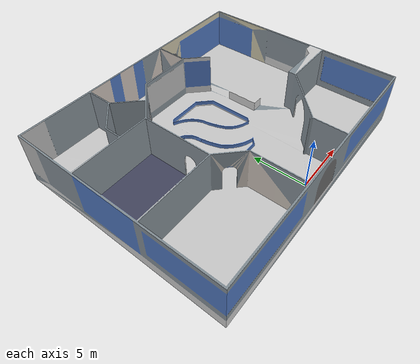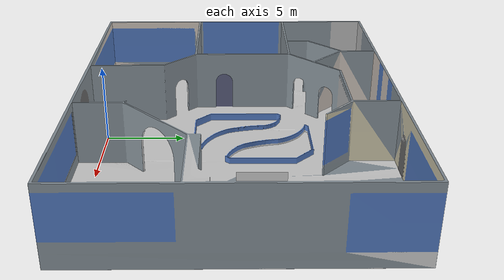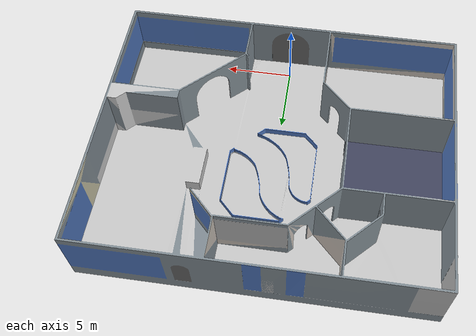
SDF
<?xml version="1.0"?>

<sdf version='1.4'>
  <world name='default'>

    <model name='floor1'>
      <pose>0 0 0 0 0 0</pose>
      <static>1</static>
      <link name='link'>
        <collision name='collision'>
          <geometry>
            <mesh><uri>file:///home/mac/catkin_ws/src/spcbot/tawanbot_gazebo/worlds/meshes/floor_1_simplified2.dae</uri></mesh>
          </geometry>
          <surface>
            <friction>
              <ode>
                <mu>100</mu>
                <mu2>50</mu2>
              </ode>
            </friction>
            <bounce/>
            <contact>
              <ode/>
            </contact>
          </surface>
          <max_contacts>10</max_contacts>
        </collision>
        <visual name='visual'>
          <geometry>
            <mesh><uri>file:///home/mac/catkin_ws/src/spcbot/tawanbot_gazebo/worlds/meshes/floor_1_simplified2.dae</uri></mesh>
          </geometry>
        </visual>
        <velocity_decay>
          <linear>0</linear>
          <angular>0</angular>
        </velocity_decay>
        <self_collide>0</self_collide>
        <kinematic>0</kinematic>
        <gravity>1</gravity>
      </link>
    </model>

    <physics type='ode'>
      <max_step_size>0.001</max_step_size>
      <real_time_factor>1</real_time_factor>
      <real_time_update_rate>1000</real_time_update_rate>
      <gravity>0 0 -9.8</gravity>
    </physics>

    <scene>
      <ambient>0.4 0.4 0.4 1</ambient>
      <background>0.7 0.7 0.7 1</background>
      <shadows>1</shadows>
    </scene>

    <spherical_coordinates>
      <surface_model>EARTH_WGS84</surface_model>
      <latitude_deg>0</latitude_deg>
      <longitude_deg>0</longitude_deg>
      <elevation>0</elevation>
      <heading_deg>0</heading_deg>
    </spherical_coordinates>

    <light type='point' name='point_light00'>
      <pose>0 8.5 20 0 0 0</pose>
      <diffuse>1 1 1 1</diffuse>
      <attenuation>
        <range>50</range>
        <linear>0.05</linear>
        <constant>0.8</constant>
        <quadratic>0.0</quadratic>
      </attenuation>
      <cast_shadows>0</cast_shadows>
    </light>

  </world>
</sdf>
